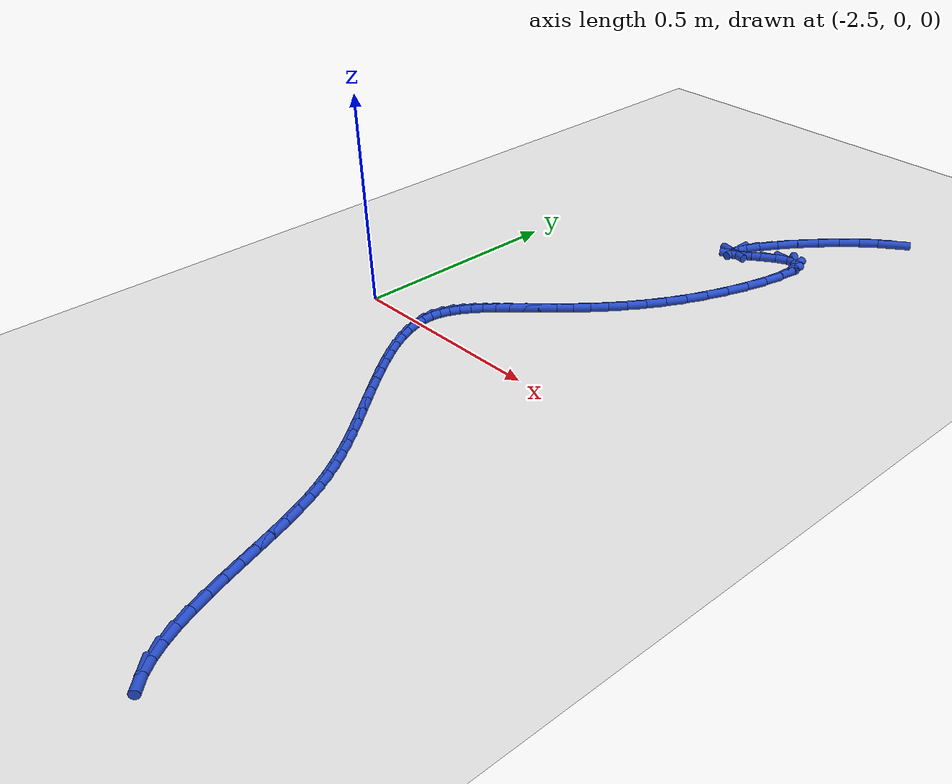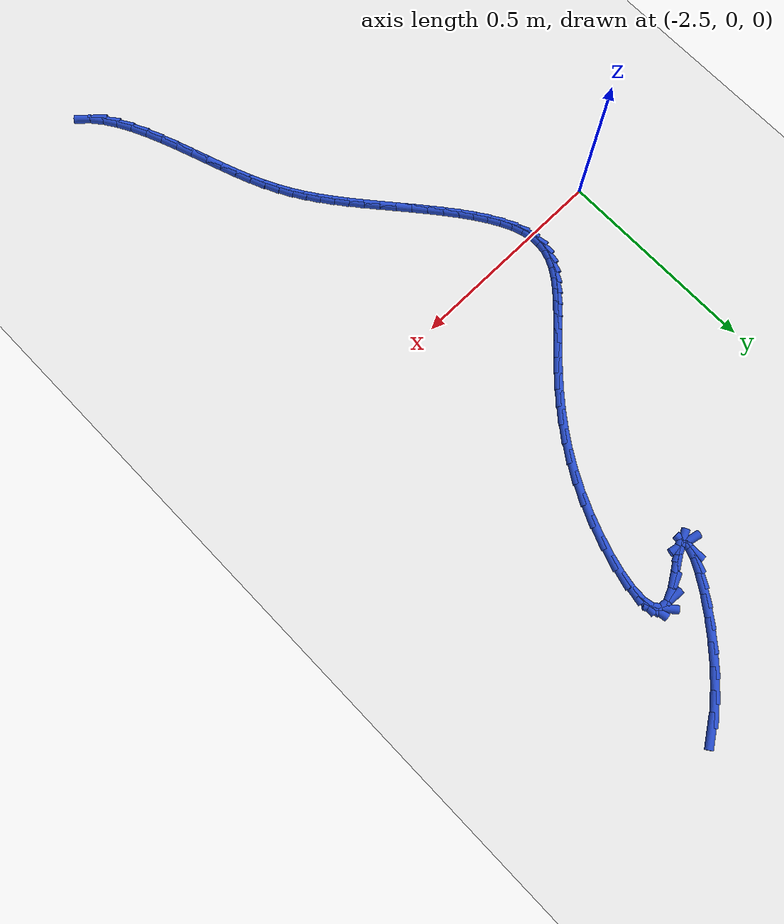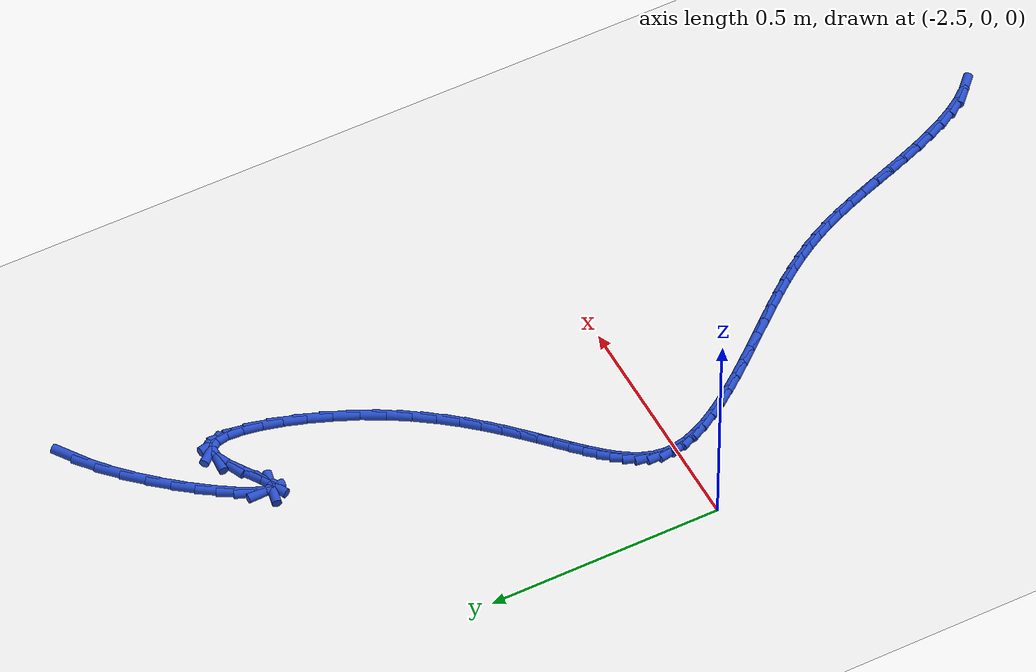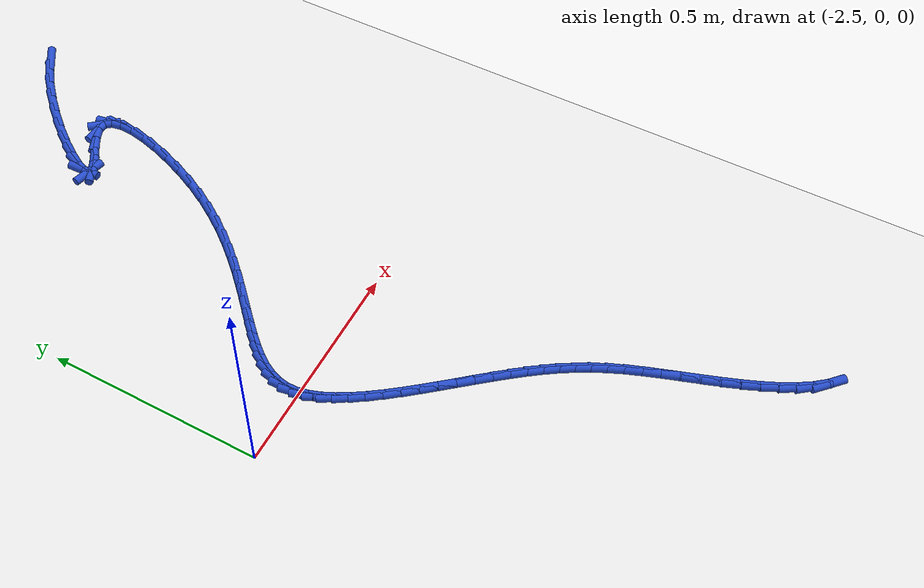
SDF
<sdf version="1.6">
 <world name="default">
  <model name="ground_plane">
   <static>1</static>
   <link name="link">
    <collision name="collision">
     <geometry><plane><normal>0 0 1</normal><size>100 100</size></plane></geometry>
     <surface><friction><ode><mu>100</mu><mu2>50</mu2></ode></friction></surface>
    </collision>
    <visual name="visual">
     <cast_shadows>0</cast_shadows>
     <geometry><plane><normal>0 0 1</normal><size>100 100</size></plane></geometry>
     <material>
      <script><uri>file://media/materials/scripts/gazebo.material</uri><name>Gazebo/WhiteGlow</name></script>
     </material>
    </visual>
   </link>
  </model>
  <model name="line">
   <link name="link_72">
    <pose>-1.7922602406330903 1.0698594727714417 0.01 0 1.57 0.6049869766005426</pose>
    <collision name="collision">
     <geometry><cylinder><radius>0.01</radius><length>0.08</length></cylinder></geometry>
    </collision>
    <visual name="visual">
     <material>
      <script><name>Gazebo/Blue</name><uri>file://media/materials/scripts/gazebo.material</uri></script>
     </material>
     <geometry><cylinder><radius>0.01</radius><length>0.08</length></cylinder></geometry>
    </visual>
   </link>
   <link name="link_73">
    <pose>-1.8305306038181879 1.0433961660830882 0.01 0 1.57 0.7037240878594754</pose>
    <collision name="collision">
     <geometry><cylinder><radius>0.01</radius><length>0.08</length></cylinder></geometry>
    </collision>
    <visual name="visual">
     <material>
      <script><name>Gazebo/Blue</name><uri>file://media/materials/scripts/gazebo.material</uri></script>
     </material>
     <geometry><cylinder><radius>0.01</radius><length>0.08</length></cylinder></geometry>
    </visual>
   </link>
   <link name="link_74">
    <pose>-1.8690953881344594 1.0106672138397081 0.01 0 1.57 0.7767391319532617</pose>
    <collision name="collision">
     <geometry><cylinder><radius>0.01</radius><length>0.08</length></cylinder></geometry>
    </collision>
    <visual name="visual">
     <material>
      <script><name>Gazebo/Blue</name><uri>file://media/materials/scripts/gazebo.material</uri></script>
     </material>
     <geometry><cylinder><radius>0.01</radius><length>0.08</length></cylinder></geometry>
    </visual>
   </link>
   <link name="link_75">
    <pose>-1.906806894485441 0.9736032071900574 0.01 0 1.57 0.8353431667425341</pose>
    <collision name="collision">
     <geometry><cylinder><radius>0.01</radius><length>0.08</length></cylinder></geometry>
    </collision>
    <visual name="visual">
     <material>
      <script><name>Gazebo/Blue</name><uri>file://media/materials/scripts/gazebo.material</uri></script>
     </material>
     <geometry><cylinder><radius>0.01</radius><length>0.08</length></cylinder></geometry>
    </visual>
   </link>
   <link name="link_76">
    <pose>-1.9425174237746672 0.9341347372828884 0.01 0 1.57 0.8868426931191782</pose>
    <collision name="collision">
     <geometry><cylinder><radius>0.01</radius><length>0.08</length></cylinder></geometry>
    </collision>
    <visual name="visual">
     <material>
      <script><name>Gazebo/Blue</name><uri>file://media/materials/scripts/gazebo.material</uri></script>
     </material>
     <geometry><cylinder><radius>0.01</radius><length>0.08</length></cylinder></geometry>
    </visual>
   </link>
   <link name="link_77">
    <pose>-1.9750792769056722 0.8941923952669565 0.01 0 1.57 0.937326582108618</pose>
    <collision name="collision">
     <geometry><cylinder><radius>0.01</radius><length>0.08</length></cylinder></geometry>
    </collision>
    <visual name="visual">
     <material>
      <script><name>Gazebo/Blue</name><uri>file://media/materials/scripts/gazebo.material</uri></script>
     </material>
     <geometry><cylinder><radius>0.01</radius><length>0.08</length></cylinder></geometry>
    </visual>
   </link>
   <link name="link_78">
    <pose>-2.0033447547819927 0.8557067722910146 0.01 0 1.57 0.9942708983284558</pose>
    <collision name="collision">
     <geometry><cylinder><radius>0.01</radius><length>0.08</length></cylinder></geometry>
    </collision>
    <visual name="visual">
     <material>
      <script><name>Gazebo/Blue</name><uri>file://media/materials/scripts/gazebo.material</uri></script>
     </material>
     <geometry><cylinder><radius>0.01</radius><length>0.08</length></cylinder></geometry>
    </visual>
   </link>
   <link name="link_79">
    <pose>-2.026166158307163 0.8206084595038179 0.01 0 1.57 1.0718179621093586</pose>
    <collision name="collision">
     <geometry><cylinder><radius>0.01</radius><length>0.08</length></cylinder></geometry>
    </collision>
    <visual name="visual">
     <material>
      <script><name>Gazebo/Blue</name><uri>file://media/materials/scripts/gazebo.material</uri></script>
     </material>
     <geometry><cylinder><radius>0.01</radius><length>0.08</length></cylinder></geometry>
    </visual>
   </link>
   <link name="link_80">
    <pose>-2.042395788384718 0.7908280480541194 0.01 0 1.57 1.2104434385070313</pose>
    <collision name="collision">
     <geometry><cylinder><radius>0.01</radius><length>0.08</length></cylinder></geometry>
    </collision>
    <visual name="visual">
     <material>
      <script><name>Gazebo/Blue</name><uri>file://media/materials/scripts/gazebo.material</uri></script>
     </material>
     <geometry><cylinder><radius>0.01</radius><length>0.08</length></cylinder></geometry>
    </visual>
   </link>
   <link name="link_81">
    <pose>-2.050885945918193 0.768296129090674 0.01 0 1.57 -1.5410725139045</pose>
    <collision name="collision">
     <geometry><cylinder><radius>0.01</radius><length>0.08</length></cylinder></geometry>
    </collision>
    <visual name="visual">
     <material>
      <script><name>Gazebo/Blue</name><uri>file://media/materials/scripts/gazebo.material</uri></script>
     </material>
     <geometry><cylinder><radius>0.01</radius><length>0.08</length></cylinder></geometry>
    </visual>
   </link>
   <link name="link_82">
    <pose>-2.050488931811124 0.7549432937622355 0.01 0 1.57 -0.2118041331373783</pose>
    <collision name="collision">
     <geometry><cylinder><radius>0.01</radius><length>0.08</length></cylinder></geometry>
    </collision>
    <visual name="visual">
     <material>
      <script><name>Gazebo/Blue</name><uri>file://media/materials/scripts/gazebo.material</uri></script>
     </material>
     <geometry><cylinder><radius>0.01</radius><length>0.08</length></cylinder></geometry>
    </visual>
   </link>
   <link name="link_83">
    <pose>-2.0400570469670445 0.7527001332175576 0.01 0 1.57 0.45744897487119424</pose>
    <collision name="collision">
     <geometry><cylinder><radius>0.01</radius><length>0.08</length></cylinder></geometry>
    </collision>
    <visual name="visual">
     <material>
      <script><name>Gazebo/Blue</name><uri>file://media/materials/scripts/gazebo.material</uri></script>
     </material>
     <geometry><cylinder><radius>0.01</radius><length>0.08</length></cylinder></geometry>
    </visual>
   </link>
   <link name="link_84">
    <pose>-2.0186049973808413 0.7632604527032448 0.01 0 1.57 0.5866027108496537</pose>
    <collision name="collision">
     <geometry><cylinder><radius>0.01</radius><length>0.08</length></cylinder></geometry>
    </collision>
    <visual name="visual">
     <material>
      <script><name>Gazebo/Blue</name><uri>file://media/materials/scripts/gazebo.material</uri></script>
     </material>
     <geometry><cylinder><radius>0.01</radius><length>0.08</length></cylinder></geometry>
    </visual>
   </link>
   <link name="link_85">
    <pose>-1.9887022792217361 0.7831351891740828 0.01 0 1.57 0.5686621309636046</pose>
    <collision name="collision">
     <geometry><cylinder><radius>0.01</radius><length>0.08</length></cylinder></geometry>
    </collision>
    <visual name="visual">
     <material>
      <script><name>Gazebo/Blue</name><uri>file://media/materials/scripts/gazebo.material</uri></script>
     </material>
     <geometry><cylinder><radius>0.01</radius><length>0.08</length></cylinder></geometry>
    </visual>
   </link>
   <link name="link_86">
    <pose>-1.9563756877687135 0.8037945528323589 0.01 0 1.57 0.418411751020627</pose>
    <collision name="collision">
     <geometry><cylinder><radius>0.01</radius><length>0.08</length></cylinder></geometry>
    </collision>
    <visual name="visual">
     <material>
      <script><name>Gazebo/Blue</name><uri>file://media/materials/scripts/gazebo.material</uri></script>
     </material>
     <geometry><cylinder><radius>0.01</radius><length>0.08</length></cylinder></geometry>
    </visual>
   </link>
   <link name="link_87">
    <pose>-1.9277920971813378 0.8165047867914021 0.01 0 1.57 -0.06653541990882483</pose>
    <collision name="collision">
     <geometry><cylinder><radius>0.01</radius><length>0.08</length></cylinder></geometry>
    </collision>
    <visual name="visual">
     <material>
      <script><name>Gazebo/Blue</name><uri>file://media/materials/scripts/gazebo.material</uri></script>
     </material>
     <geometry><cylinder><radius>0.01</radius><length>0.08</length></cylinder></geometry>
    </visual>
   </link>
   <link name="link_88">
    <pose>-1.9074334913399102 0.8151482159827474 0.01 0 1.57 -0.8723620137242741</pose>
    <collision name="collision">
     <geometry><cylinder><radius>0.01</radius><length>0.08</length></cylinder></geometry>
    </collision>
    <visual name="visual">
     <material>
      <script><name>Gazebo/Blue</name><uri>file://media/materials/scripts/gazebo.material</uri></script>
     </material>
     <geometry><cylinder><radius>0.01</radius><length>0.08</length></cylinder></geometry>
    </visual>
   </link>
   <link name="link_89">
    <pose>-1.895252271215366 0.8006401215126245 0.01 0 1.57 -1.3850871233922117</pose>
    <collision name="collision">
     <geometry><cylinder><radius>0.01</radius><length>0.08</length></cylinder></geometry>
    </collision>
    <visual name="visual">
     <material>
      <script><name>Gazebo/Blue</name><uri>file://media/materials/scripts/gazebo.material</uri></script>
     </material>
     <geometry><cylinder><radius>0.01</radius><length>0.08</length></cylinder></geometry>
    </visual>
   </link>
   <link name="link_90">
    <pose>-1.8904474689103934 0.7750655191714086 0.01 0 1.57 1.5196012927165397</pose>
    <collision name="collision">
     <geometry><cylinder><radius>0.01</radius><length>0.08</length></cylinder></geometry>
    </collision>
    <visual name="visual">
     <material>
      <script><name>Gazebo/Blue</name><uri>file://media/materials/scripts/gazebo.material</uri></script>
     </material>
     <geometry><cylinder><radius>0.01</radius><length>0.08</length></cylinder></geometry>
    </visual>
   </link>
   <link name="link_91">
    <pose>-1.8922181165276777 0.740509424749473 0.01 0 1.57 1.3907490449269608</pose>
    <collision name="collision">
     <geometry><cylinder><radius>0.01</radius><length>0.08</length></cylinder></geometry>
    </collision>
    <visual name="visual">
     <material>
      <script><name>Gazebo/Blue</name><uri>file://media/materials/scripts/gazebo.material</uri></script>
     </material>
     <geometry><cylinder><radius>0.01</radius><length>0.08</length></cylinder></geometry>
    </visual>
   </link>
   <link name="link_92">
    <pose>-1.8997632461699057 0.6990568540371933 0.01 0 1.57 1.3065334629242669</pose>
    <collision name="collision">
     <geometry><cylinder><radius>0.01</radius><length>0.08</length></cylinder></geometry>
    </collision>
    <visual name="visual">
     <material>
      <script><name>Gazebo/Blue</name><uri>file://media/materials/scripts/gazebo.material</uri></script>
     </material>
     <geometry><cylinder><radius>0.01</radius><length>0.08</length></cylinder></geometry>
    </visual>
   </link>
   <link name="link_93">
    <pose>-1.9122818899397642 0.652792822824943 0.01 0 1.57 1.2424280225285025</pose>
    <collision name="collision">
     <geometry><cylinder><radius>0.01</radius><length>0.08</length></cylinder></geometry>
    </collision>
    <visual name="visual">
     <material>
      <script><name>Gazebo/Blue</name><uri>file://media/materials/scripts/gazebo.material</uri></script>
     </material>
     <geometry><cylinder><radius>0.01</radius><length>0.08</length></cylinder></geometry>
    </visual>
   </link>
   <link name="link_94">
    <pose>-1.9289730799399385 0.6038023469030974 0.01 0 1.57 1.1866476265695902</pose>
    <collision name="collision">
     <geometry><cylinder><radius>0.01</radius><length>0.08</length></cylinder></geometry>
    </collision>
    <visual name="visual">
     <material>
      <script><name>Gazebo/Blue</name><uri>file://media/materials/scripts/gazebo.material</uri></script>
     </material>
     <geometry><cylinder><radius>0.01</radius><length>0.08</length></cylinder></geometry>
    </visual>
   </link>
   <link name="link_95">
    <pose>-1.9490358482731165 0.5541704420620301 0.01 0 1.57 1.1316926501844684</pose>
    <collision name="collision">
     <geometry><cylinder><radius>0.01</radius><length>0.08</length></cylinder></geometry>
    </collision>
    <visual name="visual">
     <material>
      <script><name>Gazebo/Blue</name><uri>file://media/materials/scripts/gazebo.material</uri></script>
     </material>
     <geometry><cylinder><radius>0.01</radius><length>0.08</length></cylinder></geometry>
    </visual>
   </link>
   <link name="link_96">
    <pose>-1.9716692270419829 0.5059821240921165 0.01 0 1.57 1.0723572215384916</pose>
    <collision name="collision">
     <geometry><cylinder><radius>0.01</radius><length>0.08</length></cylinder></geometry>
    </collision>
    <visual name="visual">
     <material>
      <script><name>Gazebo/Blue</name><uri>file://media/materials/scripts/gazebo.material</uri></script>
     </material>
     <geometry><cylinder><radius>0.01</radius><length>0.08</length></cylinder></geometry>
    </visual>
   </link>
   <link name="link_97">
    <pose>-1.996122802162982 0.46105361581525356 0.01 0 1.57 1.0132516372227227</pose>
    <collision name="collision">
     <geometry><cylinder><radius>0.01</radius><length>0.08</length></cylinder></geometry>
    </collision>
    <visual name="visual">
     <material>
      <script><name>Gazebo/Blue</name><uri>file://media/materials/scripts/gazebo.material</uri></script>
     </material>
     <geometry><cylinder><radius>0.01</radius><length>0.08</length></cylinder></geometry>
    </visual>
   </link>
   <link name="link_98">
    <pose>-2.021937251558968 0.4196534134094386 0.01 0 1.57 0.9581274213804175</pose>
    <collision name="collision">
     <geometry><cylinder><radius>0.01</radius><length>0.08</length></cylinder></geometry>
    </collision>
    <visual name="visual">
     <material>
      <script><name>Gazebo/Blue</name><uri>file://media/materials/scripts/gazebo.material</uri></script>
     </material>
     <geometry><cylinder><radius>0.01</radius><length>0.08</length></cylinder></geometry>
    </visual>
   </link>
   <link name="link_99">
    <pose>-2.0487572288806786 0.38149717752018314 0.01 0 1.57 0.9080804795161215</pose>
    <collision name="collision">
     <geometry><cylinder><radius>0.01</radius><length>0.08</length></cylinder></geometry>
    </collision>
    <visual name="visual">
     <material>
      <script><name>Gazebo/Blue</name><uri>file://media/materials/scripts/gazebo.material</uri></script>
     </material>
     <geometry><cylinder><radius>0.01</radius><length>0.08</length></cylinder></geometry>
    </visual>
   </link>
   <link name="link_100">
    <pose>-2.0762275175373337 0.3462998788714076 0.01 0 1.57 0.864155209496878</pose>
    <collision name="collision">
     <geometry><cylinder><radius>0.01</radius><length>0.08</length></cylinder></geometry>
    </collision>
    <visual name="visual">
     <material>
      <script><name>Gazebo/Blue</name><uri>file://media/materials/scripts/gazebo.material</uri></script>
     </material>
     <geometry><cylinder><radius>0.01</radius><length>0.08</length></cylinder></geometry>
    </visual>
   </link>
   <link name="link_101">
    <pose>-2.1039929009381533 0.31377648818703463 0.01 0 1.57 0.8273731475131207</pose>
    <collision name="collision">
     <geometry><cylinder><radius>0.01</radius><length>0.08</length></cylinder></geometry>
    </collision>
    <visual name="visual">
     <material>
      <script><name>Gazebo/Blue</name><uri>file://media/materials/scripts/gazebo.material</uri></script>
     </material>
     <geometry><cylinder><radius>0.01</radius><length>0.08</length></cylinder></geometry>
    </visual>
   </link>
   <link name="link_102">
    <pose>-2.131698162492358 0.2836419761909852 0.01 0 1.57 0.798787305850978</pose>
    <collision name="collision">
     <geometry><cylinder><radius>0.01</radius><length>0.08</length></cylinder></geometry>
    </collision>
    <visual name="visual">
     <material>
      <script><name>Gazebo/Blue</name><uri>file://media/materials/scripts/gazebo.material</uri></script>
     </material>
     <geometry><cylinder><radius>0.01</radius><length>0.08</length></cylinder></geometry>
    </visual>
   </link>
   <link name="link_103">
    <pose>-2.1589880856091663 0.25561131360718153 0.01 0 1.57 0.7795662822124668</pose>
    <collision name="collision">
     <geometry><cylinder><radius>0.01</radius><length>0.08</length></cylinder></geometry>
    </collision>
    <visual name="visual">
     <material>
      <script><name>Gazebo/Blue</name><uri>file://media/materials/scripts/gazebo.material</uri></script>
     </material>
     <geometry><cylinder><radius>0.01</radius><length>0.08</length></cylinder></geometry>
    </visual>
   </link>
   <link name="link_104">
    <pose>-2.1855074536978005 0.22939947115954462 0.01 0 1.57 0.7711087160302562</pose>
    <collision name="collision">
     <geometry><cylinder><radius>0.01</radius><length>0.08</length></cylinder></geometry>
    </collision>
    <visual name="visual">
     <material>
      <script><name>Gazebo/Blue</name><uri>file://media/materials/scripts/gazebo.material</uri></script>
     </material>
     <geometry><cylinder><radius>0.01</radius><length>0.08</length></cylinder></geometry>
    </visual>
   </link>
   <link name="link_105">
    <pose>-2.2109010501674793 0.20472141957199694 0.01 0 1.57 0.7751894163091201</pose>
    <collision name="collision">
     <geometry><cylinder><radius>0.01</radius><length>0.08</length></cylinder></geometry>
    </collision>
    <visual name="visual">
     <material>
      <script><name>Gazebo/Blue</name><uri>file://media/materials/scripts/gazebo.material</uri></script>
     </material>
     <geometry><cylinder><radius>0.01</radius><length>0.08</length></cylinder></geometry>
    </visual>
   </link>
   <link name="link_106">
    <pose>-2.234813658427424 0.1812921295684594 0.01 0 1.57 0.7941347417819576</pose>
    <collision name="collision">
     <geometry><cylinder><radius>0.01</radius><length>0.08</length></cylinder></geometry>
    </collision>
    <visual name="visual">
     <material>
      <script><name>Gazebo/Blue</name><uri>file://media/materials/scripts/gazebo.material</uri></script>
     </material>
     <geometry><cylinder><radius>0.01</radius><length>0.08</length></cylinder></geometry>
    </visual>
   </link>
   <link name="link_107">
    <pose>-2.2568900618868524 0.15882657187285418 0.01 0 1.57 0.8310057942246397</pose>
    <collision name="collision">
     <geometry><cylinder><radius>0.01</radius><length>0.08</length></cylinder></geometry>
    </collision>
    <visual name="visual">
     <material>
      <script><name>Gazebo/Blue</name><uri>file://media/materials/scripts/gazebo.material</uri></script>
     </material>
     <geometry><cylinder><radius>0.01</radius><length>0.08</length></cylinder></geometry>
    </visual>
   </link>
   <link name="link_108">
    <pose>-2.2767750439549874 0.13703971720910255 0.01 0 1.57 0.8897090464406914</pose>
    <collision name="collision">
     <geometry><cylinder><radius>0.01</radius><length>0.08</length></cylinder></geometry>
    </collision>
    <visual name="visual">
     <material>
      <script><name>Gazebo/Blue</name><uri>file://media/materials/scripts/gazebo.material</uri></script>
     </material>
     <geometry><cylinder><radius>0.01</radius><length>0.08</length></cylinder></geometry>
    </visual>
   </link>
   <link name="link_109">
    <pose>-2.2941133880410467 0.11564653630112653 0.01 0 1.57 0.9748091746693971</pose>
    <collision name="collision">
     <geometry><cylinder><radius>0.01</radius><length>0.08</length></cylinder></geometry>
    </collision>
    <visual name="visual">
     <material>
      <script><name>Gazebo/Blue</name><uri>file://media/materials/scripts/gazebo.material</uri></script>
     </material>
     <geometry><cylinder><radius>0.01</radius><length>0.08</length></cylinder></geometry>
    </visual>
   </link>
   <link name="link_110">
    <pose>-2.3085498775542517 0.09436199987284734 0.01 0 1.57 1.0905532997076421</pose>
    <collision name="collision">
     <geometry><cylinder><radius>0.01</radius><length>0.08</length></cylinder></geometry>
    </collision>
    <visual name="visual">
     <material>
      <script><name>Gazebo/Blue</name><uri>file://media/materials/scripts/gazebo.material</uri></script>
     </material>
     <geometry><cylinder><radius>0.01</radius><length>0.08</length></cylinder></geometry>
    </visual>
   </link>
   <link name="link_111">
    <pose>-2.319729295903822 0.07290107864818719 0.01 0 1.57 1.2384227907892578</pose>
    <collision name="collision">
     <geometry><cylinder><radius>0.01</radius><length>0.08</length></cylinder></geometry>
    </collision>
    <visual name="visual">
     <material>
      <script><name>Gazebo/Blue</name><uri>file://media/materials/scripts/gazebo.material</uri></script>
     </material>
     <geometry><cylinder><radius>0.01</radius><length>0.08</length></cylinder></geometry>
    </visual>
   </link>
   <link name="link_112">
    <pose>-2.3272964264989784 0.050978743351067425 0.01 0 1.57 1.4133188943282244</pose>
    <collision name="collision">
     <geometry><cylinder><radius>0.01</radius><length>0.08</length></cylinder></geometry>
    </collision>
    <visual name="visual">
     <material>
      <script><name>Gazebo/Blue</name><uri>file://media/materials/scripts/gazebo.material</uri></script>
     </material>
     <geometry><cylinder><radius>0.01</radius><length>0.08</length></cylinder></geometry>
    </visual>
   </link>
   <link name="link_113">
    <pose>-2.33089605274894 0.028309964705409724 0.01 0 1.57 -1.5404159706303686</pose>
    <collision name="collision">
     <geometry><cylinder><radius>0.01</radius><length>0.08</length></cylinder></geometry>
    </collision>
    <visual name="visual">
     <material>
      <script><name>Gazebo/Blue</name><uri>file://media/materials/scripts/gazebo.material</uri></script>
     </material>
     <geometry><cylinder><radius>0.01</radius><length>0.08</length></cylinder></geometry>
    </visual>
   </link>
   <link name="link_114">
    <pose>-2.330175854544975 0.004611209707183986 0.01 0 1.57 -1.3676028928181294</pose>
    <collision name="collision">
     <geometry><cylinder><radius>0.01</radius><length>0.08</length></cylinder></geometry>
    </collision>
    <visual name="visual">
     <material>
      <script><name>Gazebo/Blue</name><uri>file://media/materials/scripts/gazebo.material</uri></script>
     </material>
     <geometry><cylinder><radius>0.01</radius><length>0.08</length></cylinder></geometry>
    </visual>
   </link>
   <link name="link_115">
    <pose>-2.3250508616027195 -0.02026294639668357 0.01 0 1.57 -1.2322822724206446</pose>
    <collision name="collision">
     <geometry><cylinder><radius>0.01</radius><length>0.08</length></cylinder></geometry>
    </collision>
    <visual name="visual">
     <material>
      <script><name>Gazebo/Blue</name><uri>file://media/materials/scripts/gazebo.material</uri></script>
     </material>
     <geometry><cylinder><radius>0.01</radius><length>0.08</length></cylinder></geometry>
    </visual>
   </link>
   <link name="link_116">
    <pose>-2.3159157331330413 -0.046210160137057456 0.01 0 1.57 -1.129568413738474</pose>
    <collision name="collision">
     <geometry><cylinder><radius>0.01</radius><length>0.08</length></cylinder></geometry>
    </collision>
    <visual name="visual">
     <material>
      <script><name>Gazebo/Blue</name><uri>file://media/materials/scripts/gazebo.material</uri></script>
     </material>
     <geometry><cylinder><radius>0.01</radius><length>0.08</length></cylinder></geometry>
    </visual>
   </link>
   <link name="link_117">
    <pose>-2.3032150823278776 -0.0731022826904495 0.01 0 1.57 -1.0519791184691751</pose>
    <collision name="collision">
     <geometry><cylinder><radius>0.01</radius><length>0.08</length></cylinder></geometry>
    </collision>
    <visual name="visual">
     <material>
      <script><name>Gazebo/Blue</name><uri>file://media/materials/scripts/gazebo.material</uri></script>
     </material>
     <geometry><cylinder><radius>0.01</radius><length>0.08</length></cylinder></geometry>
    </visual>
   </link>
   <link name="link_118">
    <pose>-2.287393522379167 -0.10081116523337215 0.01 0 1.57 -0.9934442654722538</pose>
    <collision name="collision">
     <geometry><cylinder><radius>0.01</radius><length>0.08</length></cylinder></geometry>
    </collision>
    <visual name="visual">
     <material>
      <script><name>Gazebo/Blue</name><uri>file://media/materials/scripts/gazebo.material</uri></script>
     </material>
     <geometry><cylinder><radius>0.01</radius><length>0.08</length></cylinder></geometry>
    </visual>
   </link>
   <link name="link_119">
    <pose>-2.2688956664788478 -0.12920865894233588 0.01 0 1.57 -0.949512119917622</pose>
    <collision name="collision">
     <geometry><cylinder><radius>0.01</radius><length>0.08</length></cylinder></geometry>
    </collision>
    <visual name="visual">
     <material>
      <script><name>Gazebo/Blue</name><uri>file://media/materials/scripts/gazebo.material</uri></script>
     </material>
     <geometry><cylinder><radius>0.01</radius><length>0.08</length></cylinder></geometry>
    </visual>
   </link>
   <link name="link_120">
    <pose>-2.248166127818856 -0.15816661499385304 0.01 0 1.57 -0.9170550975662727</pose>
    <collision name="collision">
     <geometry><cylinder><radius>0.01</radius><length>0.08</length></cylinder></geometry>
    </collision>
    <visual name="visual">
     <material>
      <script><name>Gazebo/Blue</name><uri>file://media/materials/scripts/gazebo.material</uri></script>
     </material>
     <geometry><cylinder><radius>0.01</radius><length>0.08</length></cylinder></geometry>
    </visual>
   </link>
   <link name="link_121">
    <pose>-2.225649519591131 -0.18755688456443553 0.01 0 1.57 -0.8939333374711408</pose>
    <collision name="collision">
     <geometry><cylinder><radius>0.01</radius><length>0.08</length></cylinder></geometry>
    </collision>
    <visual name="visual">
     <material>
      <script><name>Gazebo/Blue</name><uri>file://media/materials/scripts/gazebo.material</uri></script>
     </material>
     <geometry><cylinder><radius>0.01</radius><length>0.08</length></cylinder></geometry>
    </visual>
   </link>
   <link name="link_122">
    <pose>-2.2017904549876097 -0.21725131883059579 0.01 0 1.57 -0.8787339009588007</pose>
    <collision name="collision">
     <geometry><cylinder><radius>0.01</radius><length>0.08</length></cylinder></geometry>
    </collision>
    <visual name="visual">
     <material>
      <script><name>Gazebo/Blue</name><uri>file://media/materials/scripts/gazebo.material</uri></script>
     </material>
     <geometry><cylinder><radius>0.01</radius><length>0.08</length></cylinder></geometry>
    </visual>
   </link>
   <link name="link_123">
    <pose>-2.17703354720023 -0.24712176896884422 0.01 0 1.57 -0.8705952252850652</pose>
    <collision name="collision">
     <geometry><cylinder><radius>0.01</radius><length>0.08</length></cylinder></geometry>
    </collision>
    <visual name="visual">
     <material>
      <script><name>Gazebo/Blue</name><uri>file://media/materials/scripts/gazebo.material</uri></script>
     </material>
     <geometry><cylinder><radius>0.01</radius><length>0.08</length></cylinder></geometry>
    </visual>
   </link>
   <link name="link_124">
    <pose>-2.1518234094209303 -0.2770400861556933 0.01 0 1.57 -0.869102418783577</pose>
    <collision name="collision">
     <geometry><cylinder><radius>0.01</radius><length>0.08</length></cylinder></geometry>
    </collision>
    <visual name="visual">
     <material>
      <script><name>Gazebo/Blue</name><uri>file://media/materials/scripts/gazebo.material</uri></script>
     </material>
     <geometry><cylinder><radius>0.01</radius><length>0.08</length></cylinder></geometry>
    </visual>
   </link>
   <link name="link_125">
    <pose>-2.1266046548416475 -0.3068781215676547 0.01 0 1.57 -0.8742398866877094</pose>
    <collision name="collision">
     <geometry><cylinder><radius>0.01</radius><length>0.08</length></cylinder></geometry>
    </collision>
    <visual name="visual">
     <material>
      <script><name>Gazebo/Blue</name><uri>file://media/materials/scripts/gazebo.material</uri></script>
     </material>
     <geometry><cylinder><radius>0.01</radius><length>0.08</length></cylinder></geometry>
    </visual>
   </link>
   <link name="link_126">
    <pose>-2.101821896654319 -0.33650772638124105 0.01 0 1.57 -0.8863948204912471</pose>
    <collision name="collision">
     <geometry><cylinder><radius>0.01</radius><length>0.08</length></cylinder></geometry>
    </collision>
    <visual name="visual">
     <material>
      <script><name>Gazebo/Blue</name><uri>file://media/materials/scripts/gazebo.material</uri></script>
     </material>
     <geometry><cylinder><radius>0.01</radius><length>0.08</length></cylinder></geometry>
    </visual>
   </link>
   <link name="link_127">
    <pose>-2.077919748050885 -0.3658007517729628 0.01 0 1.57 -0.9064135888433866</pose>
    <collision name="collision">
     <geometry><cylinder><radius>0.01</radius><length>0.08</length></cylinder></geometry>
    </collision>
    <visual name="visual">
     <material>
      <script><name>Gazebo/Blue</name><uri>file://media/materials/scripts/gazebo.material</uri></script>
     </material>
     <geometry><cylinder><radius>0.01</radius><length>0.08</length></cylinder></geometry>
    </visual>
   </link>
   <link name="link_128">
    <pose>-2.0553428222232806 -0.3946290489193322 0.01 0 1.57 -0.9353753002015814</pose>
    <collision name="collision">
     <geometry><cylinder><radius>0.01</radius><length>0.08</length></cylinder></geometry>
    </collision>
    <visual name="visual">
     <material>
      <script><name>Gazebo/Blue</name><uri>file://media/materials/scripts/gazebo.material</uri></script>
     </material>
     <geometry><cylinder><radius>0.01</radius><length>0.08</length></cylinder></geometry>
    </visual>
   </link>
   <link name="link_129">
    <pose>-2.0344783406212303 -0.42292176471007 0.01 0 1.57 -0.9718464488455417</pose>
    <collision name="collision">
     <geometry><cylinder><radius>0.01</radius><length>0.08</length></cylinder></geometry>
    </collision>
    <visual name="visual">
     <material>
      <script><name>Gazebo/Blue</name><uri>file://media/materials/scripts/gazebo.material</uri></script>
     </material>
     <geometry><cylinder><radius>0.01</radius><length>0.08</length></cylinder></geometry>
    </visual>
   </link>
   <link name="link_130">
    <pose>-2.0152936887662145 -0.4510271794853048 0.01 0 1.57 -1.0136877752797435</pose>
    <collision name="collision">
     <geometry><cylinder><radius>0.01</radius><length>0.08</length></cylinder></geometry>
    </collision>
    <visual name="visual">
     <material>
      <script><name>Gazebo/Blue</name><uri>file://media/materials/scripts/gazebo.material</uri></script>
     </material>
     <geometry><cylinder><radius>0.01</radius><length>0.08</length></cylinder></geometry>
    </visual>
   </link>
   <link name="link_131">
    <pose>-1.9975697596039022 -0.4794797541178846 0.01 0 1.57 -1.0588679559209404</pose>
    <collision name="collision">
     <geometry><cylinder><radius>0.01</radius><length>0.08</length></cylinder></geometry>
    </collision>
    <visual name="visual">
     <material>
      <script><name>Gazebo/Blue</name><uri>file://media/materials/scripts/gazebo.material</uri></script>
     </material>
     <geometry><cylinder><radius>0.01</radius><length>0.08</length></cylinder></geometry>
    </visual>
   </link>
   <link name="link_132">
    <pose>-1.9810866017888413 -0.5088147923590965 0.01 0 1.57 -1.1049157137718597</pose>
    <collision name="collision">
     <geometry><cylinder><radius>0.01</radius><length>0.08</length></cylinder></geometry>
    </collision>
    <visual name="visual">
     <material>
      <script><name>Gazebo/Blue</name><uri>file://media/materials/scripts/gazebo.material</uri></script>
     </material>
     <geometry><cylinder><radius>0.01</radius><length>0.08</length></cylinder></geometry>
    </visual>
   </link>
   <link name="link_133">
    <pose>-1.9656242639755748 -0.5395675979602295 0.01 0 1.57 -1.1493716695896923</pose>
    <collision name="collision">
     <geometry><cylinder><radius>0.01</radius><length>0.08</length></cylinder></geometry>
    </collision>
    <visual name="visual">
     <material>
      <script><name>Gazebo/Blue</name><uri>file://media/materials/scripts/gazebo.material</uri></script>
     </material>
     <geometry><cylinder><radius>0.01</radius><length>0.08</length></cylinder></geometry>
    </visual>
   </link>
   <link name="link_134">
    <pose>-1.9509627948186474 -0.5722734746725716 0.01 0 1.57 -1.189175644979147</pose>
    <collision name="collision">
     <geometry><cylinder><radius>0.01</radius><length>0.08</length></cylinder></geometry>
    </collision>
    <visual name="visual">
     <material>
      <script><name>Gazebo/Blue</name><uri>file://media/materials/scripts/gazebo.material</uri></script>
     </material>
     <geometry><cylinder><radius>0.01</radius><length>0.08</length></cylinder></geometry>
    </visual>
   </link>
   <link name="link_135">
    <pose>-1.9368814530701812 -0.6073633859584756 0.01 0 1.57 -1.2168230475795005</pose>
    <collision name="collision">
     <geometry><cylinder><radius>0.01</radius><length>0.08</length></cylinder></geometry>
    </collision>
    <visual name="visual">
     <material>
      <script><name>Gazebo/Blue</name><uri>file://media/materials/scripts/gazebo.material</uri></script>
     </material>
     <geometry><cylinder><radius>0.01</radius><length>0.08</length></cylinder></geometry>
    </visual>
   </link>
   <link name="link_136">
    <pose>-1.923153769289084 -0.6445116431715747 0.01 0 1.57 -1.231548306794453</pose>
    <collision name="collision">
     <geometry><cylinder><radius>0.01</radius><length>0.08</length></cylinder></geometry>
    </collision>
    <visual name="visual">
     <material>
      <script><name>Gazebo/Blue</name><uri>file://media/materials/scripts/gazebo.material</uri></script>
     </material>
     <geometry><cylinder><radius>0.01</radius><length>0.08</length></cylinder></geometry>
    </visual>
   </link>
   <link name="link_137">
    <pose>-1.909550748939665 -0.6830590112775111 0.01 0 1.57 -1.2350892841937087</pose>
    <collision name="collision">
     <geometry><cylinder><radius>0.01</radius><length>0.08</length></cylinder></geometry>
    </collision>
    <visual name="visual">
     <material>
      <script><name>Gazebo/Blue</name><uri>file://media/materials/scripts/gazebo.material</uri></script>
     </material>
     <geometry><cylinder><radius>0.01</radius><length>0.08</length></cylinder></geometry>
    </visual>
   </link>
   <link name="link_138">
    <pose>-1.8958433864542967 -0.7223447980049554 0.01 0 1.57 -1.2281709468534443</pose>
    <collision name="collision">
     <geometry><cylinder><radius>0.01</radius><length>0.08</length></cylinder></geometry>
    </collision>
    <visual name="visual">
     <material>
      <script><name>Gazebo/Blue</name><uri>file://media/materials/scripts/gazebo.material</uri></script>
     </material>
     <geometry><cylinder><radius>0.01</radius><length>0.08</length></cylinder></geometry>
    </visual>
   </link>
   <link name="link_139">
    <pose>-1.8818026762653552 -0.7617083110825801 0.01 0 1.57 -1.2106618348982534</pose>
    <collision name="collision">
     <geometry><cylinder><radius>0.01</radius><length>0.08</length></cylinder></geometry>
    </collision>
    <visual name="visual">
     <material>
      <script><name>Gazebo/Blue</name><uri>file://media/materials/scripts/gazebo.material</uri></script>
     </material>
     <geometry><cylinder><radius>0.01</radius><length>0.08</length></cylinder></geometry>
    </visual>
   </link>
   <link name="link_140">
    <pose>-1.8671996128052148 -0.8004888582390535 0.01 0 1.57 -1.1816010806717272</pose>
    <collision name="collision">
     <geometry><cylinder><radius>0.01</radius><length>0.08</length></cylinder></geometry>
    </collision>
    <visual name="visual">
     <material>
      <script><name>Gazebo/Blue</name><uri>file://media/materials/scripts/gazebo.material</uri></script>
     </material>
     <geometry><cylinder><radius>0.01</radius><length>0.08</length></cylinder></geometry>
    </visual>
   </link>
   <link name="link_141">
    <pose>-1.851805190506251 -0.838025747203048 0.01 0 1.57 -1.1391060077892095</pose>
    <collision name="collision">
     <geometry><cylinder><radius>0.01</radius><length>0.08</length></cylinder></geometry>
    </collision>
    <visual name="visual">
     <material>
      <script><name>Gazebo/Blue</name><uri>file://media/materials/scripts/gazebo.material</uri></script>
     </material>
     <geometry><cylinder><radius>0.01</radius><length>0.08</length></cylinder></geometry>
    </visual>
   </link>
   <link name="link_142">
    <pose>-1.8353904038008373 -0.8736582857032347 0.01 0 1.57 -1.0801762561754866</pose>
    <collision name="collision">
     <geometry><cylinder><radius>0.01</radius><length>0.08</length></cylinder></geometry>
    </collision>
    <visual name="visual">
     <material>
      <script><name>Gazebo/Blue</name><uri>file://media/materials/scripts/gazebo.material</uri></script>
     </material>
     <geometry><cylinder><radius>0.01</radius><length>0.08</length></cylinder></geometry>
    </visual>
   </link>
   <link name="link_143">
    <pose>-1.8177262471213482 -0.9067257814682849 0.01 0 1.57 -1.0004424557888465</pose>
    <collision name="collision">
     <geometry><cylinder><radius>0.01</radius><length>0.08</length></cylinder></geometry>
    </collision>
    <visual name="visual">
     <material>
      <script><name>Gazebo/Blue</name><uri>file://media/materials/scripts/gazebo.material</uri></script>
     </material>
     <geometry><cylinder><radius>0.01</radius><length>0.08</length></cylinder></geometry>
    </visual>
   </link>
   <link name="link_144">
    <pose>-1.7985837149001607 -0.9365675422268683 0.01 0 1.57 -0.8940465678700811</pose>
    <collision name="collision">
     <geometry><cylinder><radius>0.01</radius><length>0.08</length></cylinder></geometry>
    </collision>
    <visual name="visual">
     <material>
      <script><name>Gazebo/Blue</name><uri>file://media/materials/scripts/gazebo.material</uri></script>
     </material>
     <geometry><cylinder><radius>0.01</radius><length>0.08</length></cylinder></geometry>
    </visual>
   </link>
   <link name="link_145">
    <pose>-1.7777338015696478 -0.9625228757076568 0.01 0 1.57 -0.7542259757301829</pose>
    <collision name="collision">
     <geometry><cylinder><radius>0.01</radius><length>0.08</length></cylinder></geometry>
    </collision>
    <visual name="visual">
     <material>
      <script><name>Gazebo/Blue</name><uri>file://media/materials/scripts/gazebo.material</uri></script>
     </material>
     <geometry><cylinder><radius>0.01</radius><length>0.08</length></cylinder></geometry>
    </visual>
   </link>
  </model>
 </world>
</sdf>
